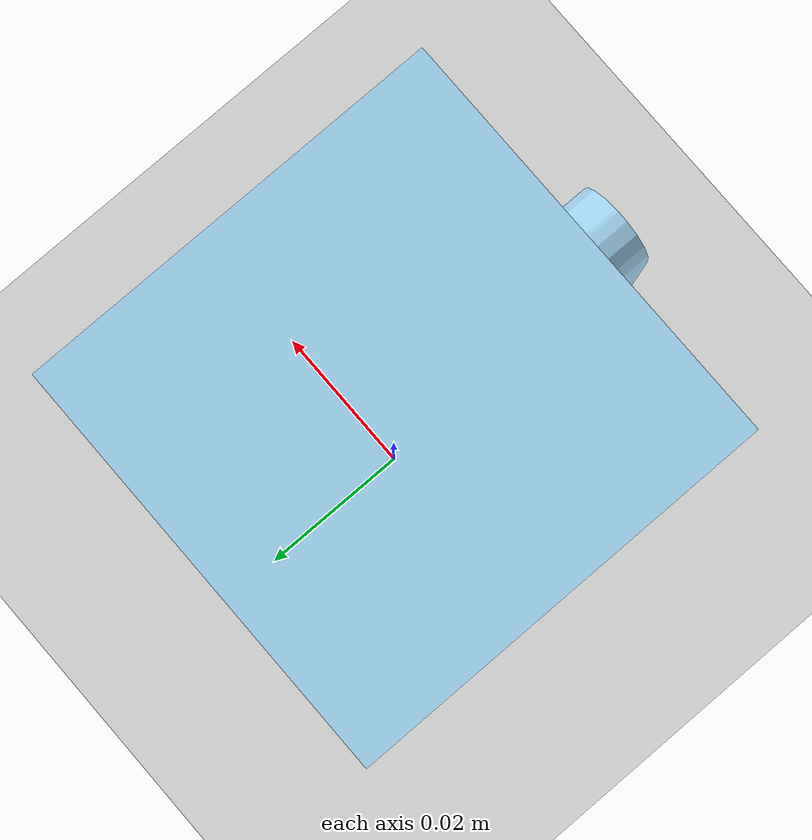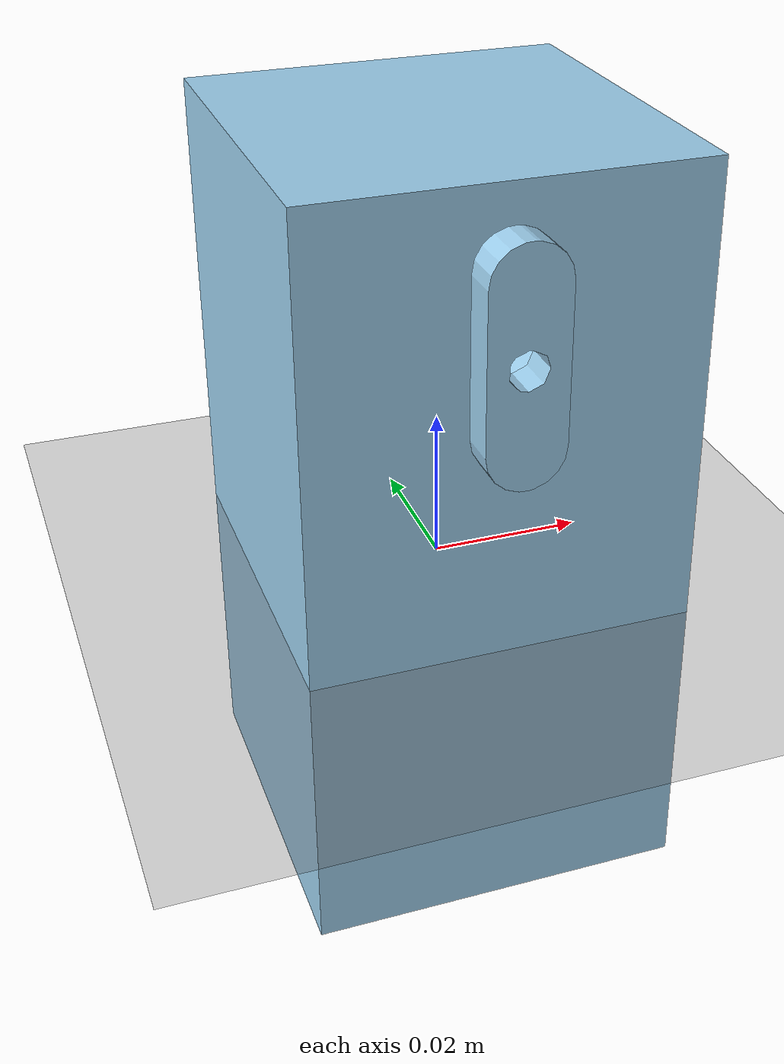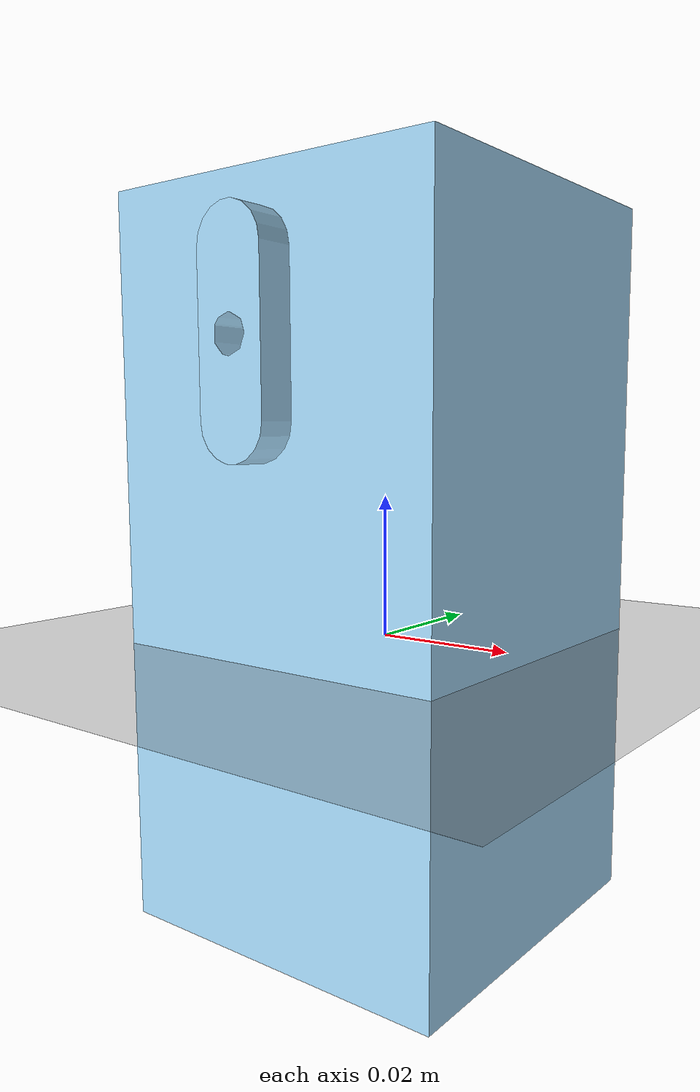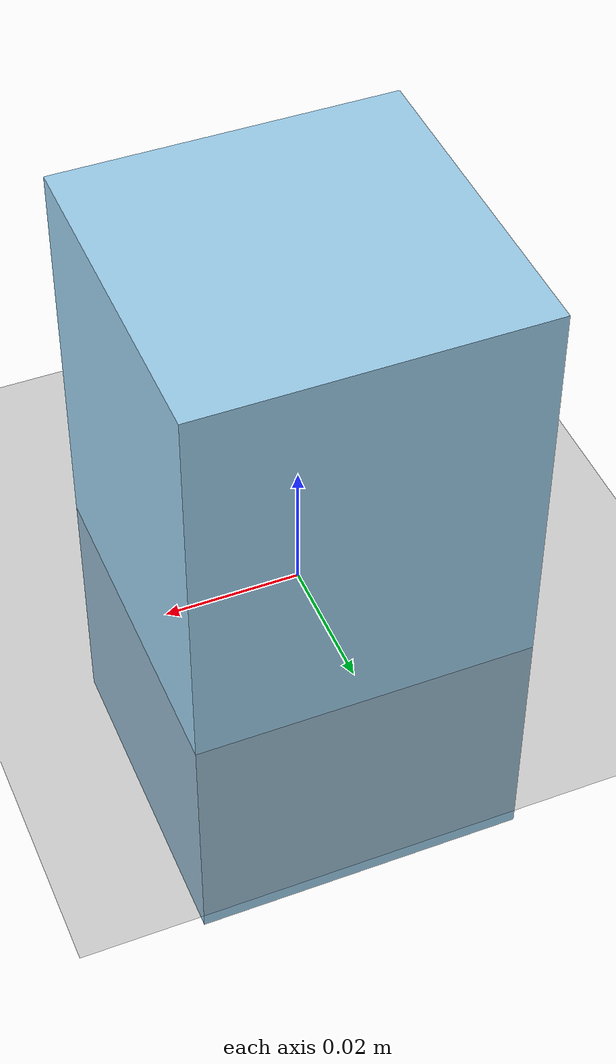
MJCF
<mujoco model="robot">
  <option iterations="50" timestep="0.001" solver="PGS" gravity="0 0 -9.81" />

  <compiler angle="radian" meshdir="meshes" eulerseq="zyx" autolimits="true" />

  <default>
    <joint limited="true" damping="0.01" armature="0.01" frictionloss="0.01" />
    <geom condim="4" contype="1" conaffinity="15" friction="0.9 0.2 0.2" solref="0.001 2" />
    <motor ctrllimited="true" />
    <equality solref="0.001 2" />
    <default class="visualgeom">
      <geom material="visualgeom" condim="1" contype="0" conaffinity="0" />
    </default>
  </default>

  <asset>
    <mesh name="Base_part" file="Base_part.stl" />
    <mesh name="Propeller_part" file="Propeller_part.stl" />
    <texture name="texplane" type="2d" builtin="checker" rgb1=".0 .0 .0" rgb2=".8 .8 .8" width="100" height="100" />
    <material name="matplane" reflectance="0." texture="texplane" texrepeat="1 1" texuniform="true" />
    <material name="visualgeom" rgba="0.5 0.9 0.2 1" />
  </asset>

  <worldbody>
    <light directional="true" diffuse="0.4 0.4 0.4" specular="0.1 0.1 0.1" pos="0 0 5.0" dir="0 0 -1" castshadow="false" />
    <light directional="true" diffuse="0.6 0.6 0.6" specular="0.2 0.2 0.2" pos="0 0 4" dir="0 0 -1" />
    <geom name="ground" type="plane" pos="0 0 0" size="100 100 0.001" quat="1 0 0 0" material="matplane" condim="3" conaffinity="15" />
    <camera name="fixed" pos="0 -3.0 0.5" xyaxes="1 0 0 0 0 1" />
    <camera name="track" mode="trackcom" pos="0 -3.0 0.5" xyaxes="1 0 0 0 0 1" />
    <body name="root" pos="0 0 0.01" quat="1 0 0 0">
      <freejoint name="root" />
      <site name="imu" size="0.01" pos="0 0 0" />
      <geom type="mesh" rgba="0.615686 0.811765 0.929412 1" mesh="Base_part" contype="1" conaffinity="0" density="0" group="1" class="visualgeom" />
      <geom type="mesh" rgba="0.615686 0.811765 0.929412 1" mesh="Base_part" />
      <body name="Propeller_part" pos="0 -0.025099 0.0302375" quat="0.707107 0.707107 0 0">
        <inertial pos="0 0 0.0025" mass="0.010162" diaginertia="1e-06 1e-06 1e-06" />
        <joint name="Revolute_1" pos="0 0 0" axis="0 0 1" range="0 3.14159" actuatorfrcrange="-80 80" />
        <geom type="mesh" rgba="0.615686 0.811765 0.929412 1" mesh="Propeller_part" contype="1" conaffinity="0" density="0" group="1" class="visualgeom" />
        <geom type="mesh" rgba="0.615686 0.811765 0.929412 1" mesh="Propeller_part" />
      </body>
    </body>
  </worldbody>

  <actuator>
    <motor name="Revolute_1" joint="Revolute_1" ctrllimited="true" ctrlrange="-80 80" gear="1" />
  </actuator>

  <sensor>
    <actuatorpos name="Revolute_1_p" actuator="Revolute_1" />
    <actuatorvel name="Revolute_1_v" actuator="Revolute_1" />
    <actuatorfrc name="Revolute_1_f" actuator="Revolute_1" noise="0.001" />
    <framequat name="orientation" objtype="site" noise="0.001" objname="imu" />
    <gyro name="angular-velocity" site="imu" noise="0.005" cutoff="34.9" />
  </sensor>
</mujoco>
